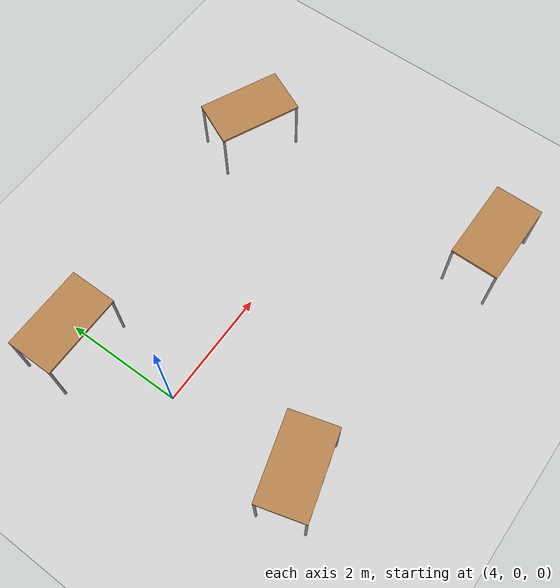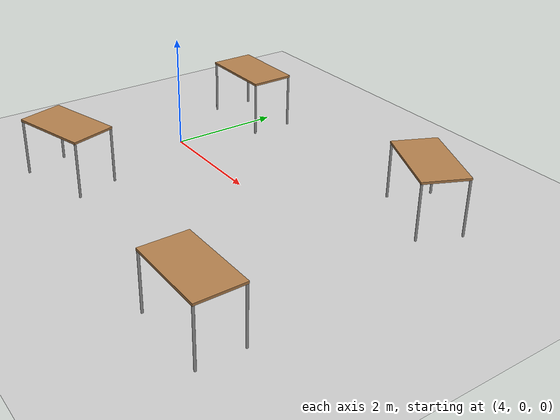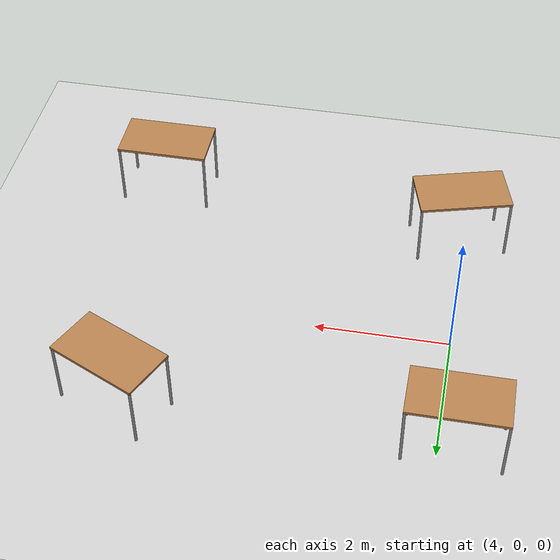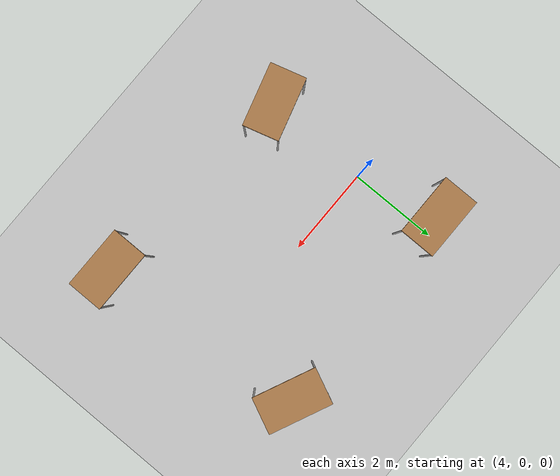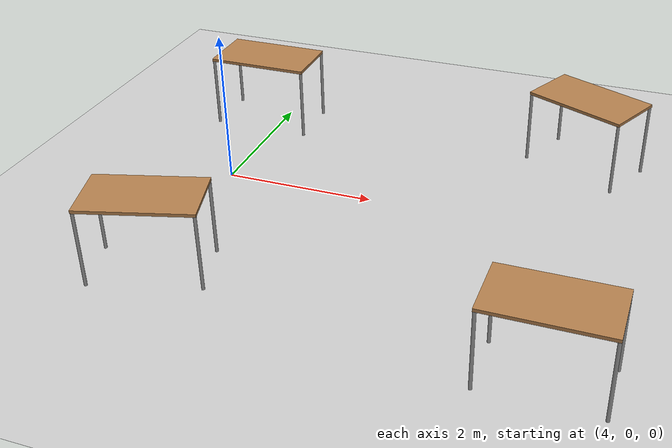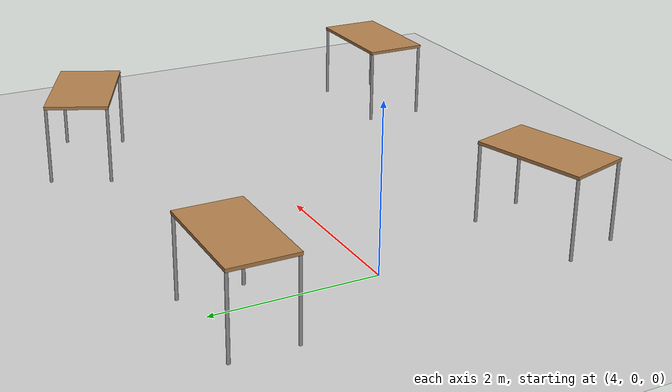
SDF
<sdf version="1.6">
 <world name="default">
  <light name="sun" type="directional">
   <pose>0 0 10 0 -0 0</pose>
   <diffuse>0.8 0.8 0.8 1</diffuse>
   <specular>0.1 0.1 0.1 1</specular>
   <attenuation>
    <range>1000</range>
    <constant>0.9</constant>
    <linear>0.01</linear>
    <quadratic>0.001</quadratic>
   </attenuation>
   <direction>-0.5 0.5 -1</direction>
  </light>
  <model name="ground_plane">
   <static>1</static>
   <link name="link">
    <collision name="collision">
     <geometry><plane><normal>0 0 1</normal><size>100 100</size></plane></geometry>
     <surface><friction><ode><mu>100</mu><mu2>50</mu2></ode></friction></surface>
    </collision>
    <visual name="visual">
     <cast_shadows>0</cast_shadows>
     <geometry><plane><normal>0 0 1</normal><size>100 100</size></plane></geometry>
     <material>
      <script><uri>file://media/materials/scripts/gazebo.material</uri><name>Gazebo/Grey</name></script>
     </material>
    </visual>
   </link>
  </model>
  <plugin name="vrc_plugin" filename="libVRCPlugin.so">
   <atlas><model_name>atlas</model_name><pin_link>utorso</pin_link></atlas>
   <drc_vehicle><model_name>golf_cart</model_name><seat_link>chassis</seat_link></drc_vehicle>
   <drc_fire_hose>
    <fire_hose_model>fire_hose</fire_hose_model>
    <coupling_link>coupling</coupling_link>
    <standpipe_model>standpipe</standpipe_model>
    <spout_link>standpipe</spout_link>
    <thread_pitch>-1000</thread_pitch>
    <coupling_relative_pose>1.17038e-05 -0.125623 0.35 -0.0412152 -1.57078 1.61199</coupling_relative_pose>
   </drc_fire_hose>
  </plugin>
  <plugin name="vrc_scoring" filename="libVRCScoringPlugin.so"/>
  <light name="sun" type="directional">
   <pose>0 0 10 0 -0 0</pose>
   <diffuse>0.8 0.8 0.8 1</diffuse>
   <specular>0.1 0.1 0.1 1</specular>
   <attenuation>
    <range>1000</range>
    <constant>0.9</constant>
    <linear>0.01</linear>
    <quadratic>0.001</quadratic>
   </attenuation>
   <direction>-0.5 0.5 -1</direction>
  </light>
  <model name="ground_plane">
   <static>1</static>
   <link name="link">
    <collision name="collision">
     <geometry><plane><normal>0 0 1</normal><size>100 100</size></plane></geometry>
     <surface><friction><ode><mu>100</mu><mu2>50</mu2></ode></friction></surface>
    </collision>
    <visual name="visual">
     <cast_shadows>0</cast_shadows>
     <geometry><plane><normal>0 0 1</normal><size>100 100</size></plane></geometry>
     <material>
      <script><uri>file://media/materials/scripts/gazebo.material</uri><name>Gazebo/Grey</name></script>
     </material>
    </visual>
   </link>
  </model>
  <gravity>0 0 -9.8</gravity>
  <magnetic_field>6e-06 2.3e-05 -4.2e-05</magnetic_field>
  <atmosphere type="adiabatic"/>
  <physics name="default_physics" default="0" type="ode">
   <real_time_update_rate>2000</real_time_update_rate>
   <max_step_size>0.0005</max_step_size>
   <ode>
    <solver>
     <type>quick</type>
     <iters>200</iters>
     <sor>1.1</sor>
     <use_dynamic_moi_rescaling>0</use_dynamic_moi_rescaling>
    </solver>
    <constraints>
     <cfm>0.0001</cfm>
     <erp>0.2</erp>
     <contact_max_correcting_vel>100</contact_max_correcting_vel>
     <contact_surface_layer>0</contact_surface_layer>
    </constraints>
   </ode>
   <real_time_factor>1</real_time_factor>
  </physics>
  <scene><ambient>0.4 0.4 0.4 1</ambient><background>0.7 0.7 0.7 1</background><shadows>1</shadows></scene>
  <spherical_coordinates>
   <surface_model>EARTH_WGS84</surface_model>
   <latitude_deg>0</latitude_deg>
   <longitude_deg>0</longitude_deg>
   <elevation>0</elevation>
   <heading_deg>0</heading_deg>
  </spherical_coordinates>
  <model name="table">
   <static>0</static>
   <link name="link">
    <collision name="surface">
     <pose>0 0 1 0 -0 0</pose>
     <geometry><box><size>1.5 0.8 0.03</size></box></geometry>
     <surface><friction><ode><mu>0.6</mu><mu2>0.6</mu2></ode></friction></surface>
    </collision>
    <visual name="visual1">
     <pose>0 0 1 0 -0 0</pose>
     <geometry><box><size>1.4 0.8 0.04</size></box></geometry>
     <material>
      <script><uri>file://media/materials/scripts/gazebo.material</uri><name>Gazebo/Wood</name></script>
     </material>
    </visual>
    <collision name="front_left_leg">
     <pose>0.68 0.38 0.5 0 -0 0</pose>
     <geometry><cylinder><radius>0.02</radius><length>1</length></cylinder></geometry>
    </collision>
    <visual name="front_left_leg">
     <pose>0.68 0.38 0.5 0 -0 0</pose>
     <geometry><cylinder><radius>0.02</radius><length>1</length></cylinder></geometry>
     <material>
      <script><uri>file://media/materials/scripts/gazebo.material</uri><name>Gazebo/Grey</name></script>
     </material>
    </visual>
    <collision name="front_right_leg">
     <pose>0.68 -0.38 0.5 0 -0 0</pose>
     <geometry><cylinder><radius>0.02</radius><length>1</length></cylinder></geometry>
    </collision>
    <visual name="front_right_leg">
     <pose>0.68 -0.38 0.5 0 -0 0</pose>
     <geometry><cylinder><radius>0.02</radius><length>1</length></cylinder></geometry>
     <material>
      <script><uri>file://media/materials/scripts/gazebo.material</uri><name>Gazebo/Grey</name></script>
     </material>
    </visual>
    <collision name="back_right_leg">
     <pose>-0.68 -0.38 0.5 0 -0 0</pose>
     <geometry><cylinder><radius>0.02</radius><length>1</length></cylinder></geometry>
    </collision>
    <visual name="back_right_leg">
     <pose>-0.68 -0.38 0.5 0 -0 0</pose>
     <geometry><cylinder><radius>0.02</radius><length>1</length></cylinder></geometry>
     <material>
      <script><uri>file://media/materials/scripts/gazebo.material</uri><name>Gazebo/Grey</name></script>
     </material>
    </visual>
    <collision name="back_left_leg">
     <pose>-0.68 0.38 0.5 0 -0 0</pose>
     <geometry><cylinder><radius>0.02</radius><length>1</length></cylinder></geometry>
    </collision>
    <visual name="back_left_leg">
     <pose>-0.68 0.38 0.5 0 -0 0</pose>
     <geometry><cylinder><radius>0.02</radius><length>1</length></cylinder></geometry>
     <material>
      <script><uri>file://media/materials/scripts/gazebo.material</uri><name>Gazebo/Grey</name></script>
     </material>
    </visual>
    <inertial>
     <inertia><ixx>1</ixx><ixy>0</ixy><ixz>0</ixz><iyy>1</iyy><iyz>0</iyz><izz>1</izz></inertia>
     <mass>1</mass>
    </inertial>
   </link>
   <pose>8.47709 1.85613 0 0 0 -0.429306</pose>
  </model>
  <model name="table_1">
   <static>0</static>
   <link name="link">
    <collision name="surface">
     <pose>0 0 1 0 -0 0</pose>
     <geometry><box><size>1.5 0.8 0.03</size></box></geometry>
     <surface><friction><ode><mu>0.6</mu><mu2>0.6</mu2></ode></friction></surface>
    </collision>
    <visual name="visual1">
     <pose>0 0 1 0 -0 0</pose>
     <geometry><box><size>1.4 0.8 0.04</size></box></geometry>
     <material>
      <script><uri>file://media/materials/scripts/gazebo.material</uri><name>Gazebo/Wood</name></script>
     </material>
    </visual>
    <collision name="front_left_leg">
     <pose>0.68 0.38 0.5 0 -0 0</pose>
     <geometry><cylinder><radius>0.02</radius><length>1</length></cylinder></geometry>
    </collision>
    <visual name="front_left_leg">
     <pose>0.68 0.38 0.5 0 -0 0</pose>
     <geometry><cylinder><radius>0.02</radius><length>1</length></cylinder></geometry>
     <material>
      <script><uri>file://media/materials/scripts/gazebo.material</uri><name>Gazebo/Grey</name></script>
     </material>
    </visual>
    <collision name="front_right_leg">
     <pose>0.68 -0.38 0.5 0 -0 0</pose>
     <geometry><cylinder><radius>0.02</radius><length>1</length></cylinder></geometry>
    </collision>
    <visual name="front_right_leg">
     <pose>0.68 -0.38 0.5 0 -0 0</pose>
     <geometry><cylinder><radius>0.02</radius><length>1</length></cylinder></geometry>
     <material>
      <script><uri>file://media/materials/scripts/gazebo.material</uri><name>Gazebo/Grey</name></script>
     </material>
    </visual>
    <collision name="back_right_leg">
     <pose>-0.68 -0.38 0.5 0 -0 0</pose>
     <geometry><cylinder><radius>0.02</radius><length>1</length></cylinder></geometry>
    </collision>
    <visual name="back_right_leg">
     <pose>-0.68 -0.38 0.5 0 -0 0</pose>
     <geometry><cylinder><radius>0.02</radius><length>1</length></cylinder></geometry>
     <material>
      <script><uri>file://media/materials/scripts/gazebo.material</uri><name>Gazebo/Grey</name></script>
     </material>
    </visual>
    <collision name="back_left_leg">
     <pose>-0.68 0.38 0.5 0 -0 0</pose>
     <geometry><cylinder><radius>0.02</radius><length>1</length></cylinder></geometry>
    </collision>
    <visual name="back_left_leg">
     <pose>-0.68 0.38 0.5 0 -0 0</pose>
     <geometry><cylinder><radius>0.02</radius><length>1</length></cylinder></geometry>
     <material>
      <script><uri>file://media/materials/scripts/gazebo.material</uri><name>Gazebo/Grey</name></script>
     </material>
    </visual>
    <inertial>
     <inertia><ixx>1</ixx><ixy>0</ixy><ixz>0</ixz><iyy>1</iyy><iyz>0</iyz><izz>1</izz></inertia>
     <mass>1</mass>
    </inertial>
   </link>
   <pose>8.85241 -2.64554 0 0 -0 0</pose>
  </model>
  <model name="table_2">
   <static>0</static>
   <link name="link">
    <collision name="surface">
     <pose>0 0 1 0 -0 0</pose>
     <geometry><box><size>1.5 0.8 0.03</size></box></geometry>
     <surface><friction><ode><mu>0.6</mu><mu2>0.6</mu2></ode></friction></surface>
    </collision>
    <visual name="visual1">
     <pose>0 0 1 0 -0 0</pose>
     <geometry><box><size>1.4 0.8 0.04</size></box></geometry>
     <material>
      <script><uri>file://media/materials/scripts/gazebo.material</uri><name>Gazebo/Wood</name></script>
     </material>
    </visual>
    <collision name="front_left_leg">
     <pose>0.68 0.38 0.5 0 -0 0</pose>
     <geometry><cylinder><radius>0.02</radius><length>1</length></cylinder></geometry>
    </collision>
    <visual name="front_left_leg">
     <pose>0.68 0.38 0.5 0 -0 0</pose>
     <geometry><cylinder><radius>0.02</radius><length>1</length></cylinder></geometry>
     <material>
      <script><uri>file://media/materials/scripts/gazebo.material</uri><name>Gazebo/Grey</name></script>
     </material>
    </visual>
    <collision name="front_right_leg">
     <pose>0.68 -0.38 0.5 0 -0 0</pose>
     <geometry><cylinder><radius>0.02</radius><length>1</length></cylinder></geometry>
    </collision>
    <visual name="front_right_leg">
     <pose>0.68 -0.38 0.5 0 -0 0</pose>
     <geometry><cylinder><radius>0.02</radius><length>1</length></cylinder></geometry>
     <material>
      <script><uri>file://media/materials/scripts/gazebo.material</uri><name>Gazebo/Grey</name></script>
     </material>
    </visual>
    <collision name="back_right_leg">
     <pose>-0.68 -0.38 0.5 0 -0 0</pose>
     <geometry><cylinder><radius>0.02</radius><length>1</length></cylinder></geometry>
    </collision>
    <visual name="back_right_leg">
     <pose>-0.68 -0.38 0.5 0 -0 0</pose>
     <geometry><cylinder><radius>0.02</radius><length>1</length></cylinder></geometry>
     <material>
      <script><uri>file://media/materials/scripts/gazebo.material</uri><name>Gazebo/Grey</name></script>
     </material>
    </visual>
    <collision name="back_left_leg">
     <pose>-0.68 0.38 0.5 0 -0 0</pose>
     <geometry><cylinder><radius>0.02</radius><length>1</length></cylinder></geometry>
    </collision>
    <visual name="back_left_leg">
     <pose>-0.68 0.38 0.5 0 -0 0</pose>
     <geometry><cylinder><radius>0.02</radius><length>1</length></cylinder></geometry>
     <material>
      <script><uri>file://media/materials/scripts/gazebo.material</uri><name>Gazebo/Grey</name></script>
     </material>
    </visual>
    <inertial>
     <inertia><ixx>1</ixx><ixy>0</ixy><ixz>0</ixz><iyy>1</iyy><iyz>0</iyz><izz>1</izz></inertia>
     <mass>1</mass>
    </inertial>
   </link>
   <pose>4.11766 -2.25356 0 0 -0 0.278497</pose>
  </model>
  <model name="table_3">
   <static>0</static>
   <link name="link">
    <collision name="surface">
     <pose>0 0 1 0 -0 0</pose>
     <geometry><box><size>1.5 0.8 0.03</size></box></geometry>
     <surface><friction><ode><mu>0.6</mu><mu2>0.6</mu2></ode></friction></surface>
    </collision>
    <visual name="visual1">
     <pose>0 0 1 0 -0 0</pose>
     <geometry><box><size>1.4 0.8 0.04</size></box></geometry>
     <material>
      <script><uri>file://media/materials/scripts/gazebo.material</uri><name>Gazebo/Wood</name></script>
     </material>
    </visual>
    <collision name="front_left_leg">
     <pose>0.68 0.38 0.5 0 -0 0</pose>
     <geometry><cylinder><radius>0.02</radius><length>1</length></cylinder></geometry>
    </collision>
    <visual name="front_left_leg">
     <pose>0.68 0.38 0.5 0 -0 0</pose>
     <geometry><cylinder><radius>0.02</radius><length>1</length></cylinder></geometry>
     <material>
      <script><uri>file://media/materials/scripts/gazebo.material</uri><name>Gazebo/Grey</name></script>
     </material>
    </visual>
    <collision name="front_right_leg">
     <pose>0.68 -0.38 0.5 0 -0 0</pose>
     <geometry><cylinder><radius>0.02</radius><length>1</length></cylinder></geometry>
    </collision>
    <visual name="front_right_leg">
     <pose>0.68 -0.38 0.5 0 -0 0</pose>
     <geometry><cylinder><radius>0.02</radius><length>1</length></cylinder></geometry>
     <material>
      <script><uri>file://media/materials/scripts/gazebo.material</uri><name>Gazebo/Grey</name></script>
     </material>
    </visual>
    <collision name="back_right_leg">
     <pose>-0.68 -0.38 0.5 0 -0 0</pose>
     <geometry><cylinder><radius>0.02</radius><length>1</length></cylinder></geometry>
    </collision>
    <visual name="back_right_leg">
     <pose>-0.68 -0.38 0.5 0 -0 0</pose>
     <geometry><cylinder><radius>0.02</radius><length>1</length></cylinder></geometry>
     <material>
      <script><uri>file://media/materials/scripts/gazebo.material</uri><name>Gazebo/Grey</name></script>
     </material>
    </visual>
    <collision name="back_left_leg">
     <pose>-0.68 0.38 0.5 0 -0 0</pose>
     <geometry><cylinder><radius>0.02</radius><length>1</length></cylinder></geometry>
    </collision>
    <visual name="back_left_leg">
     <pose>-0.68 0.38 0.5 0 -0 0</pose>
     <geometry><cylinder><radius>0.02</radius><length>1</length></cylinder></geometry>
     <material>
      <script><uri>file://media/materials/scripts/gazebo.material</uri><name>Gazebo/Grey</name></script>
     </material>
    </visual>
    <inertial>
     <inertia><ixx>1</ixx><ixy>0</ixy><ixz>0</ixz><iyy>1</iyy><iyz>0</iyz><izz>1</izz></inertia>
     <mass>1</mass>
    </inertial>
   </link>
   <pose>3.78563 1.76463 0 0 -0 0</pose>
  </model>
  <gravity>0 0 -9.81</gravity>
 </world>
</sdf>
